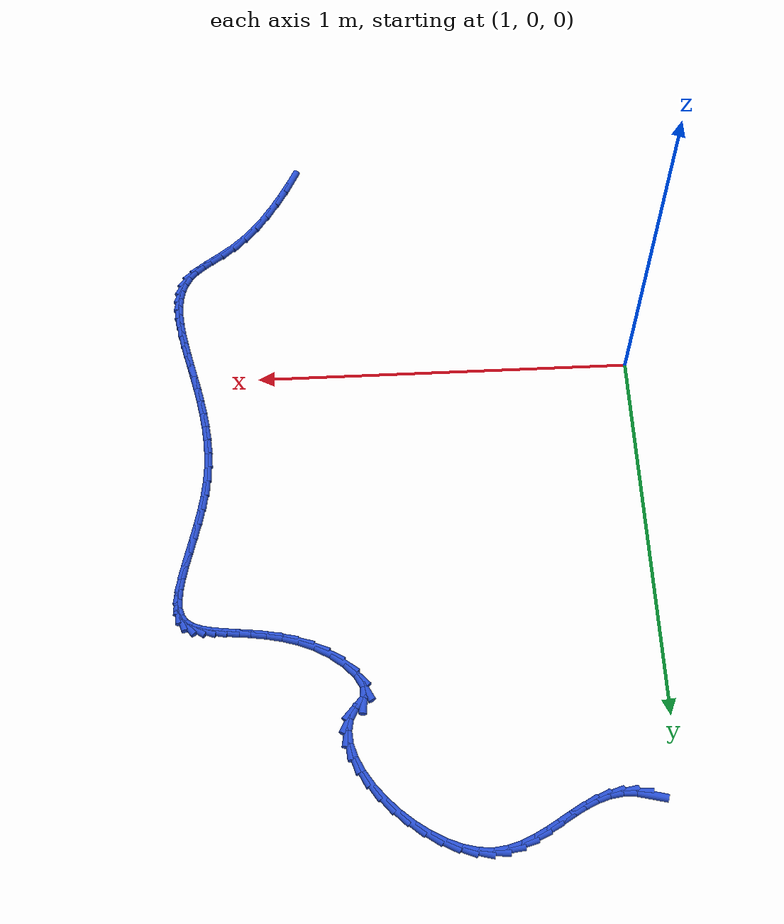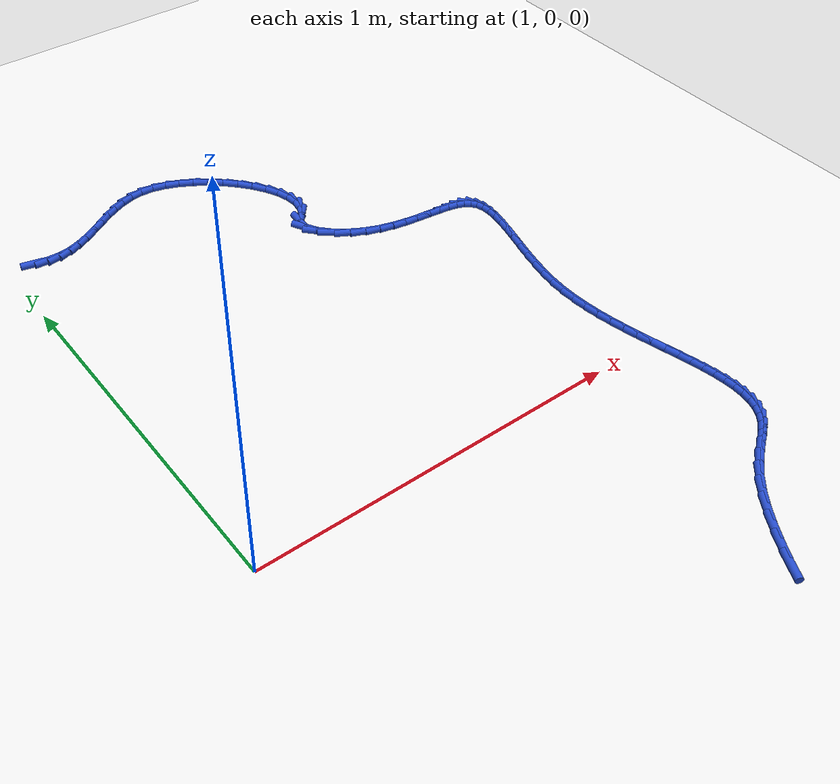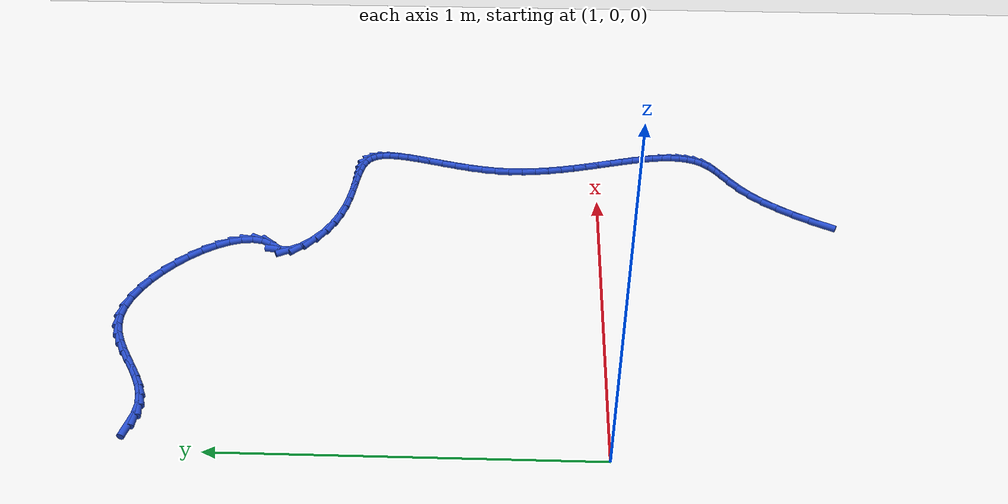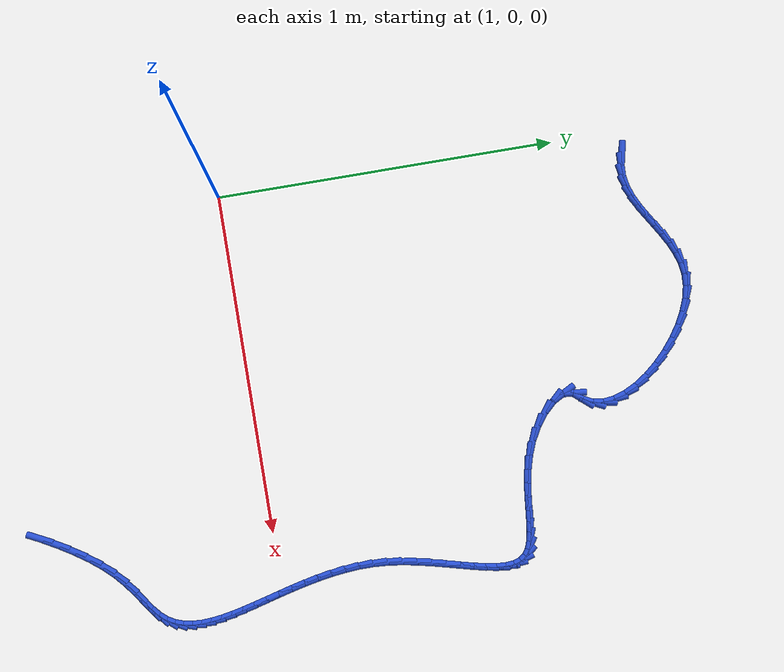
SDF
<sdf version="1.6">
 <world name="default">
  <model name="ground_plane">
   <static>1</static>
   <link name="link">
    <collision name="collision">
     <geometry><plane><normal>0 0 1</normal><size>100 100</size></plane></geometry>
     <surface><friction><ode><mu>100</mu><mu2>50</mu2></ode></friction></surface>
    </collision>
    <visual name="visual">
     <cast_shadows>0</cast_shadows>
     <geometry><plane><normal>0 0 1</normal><size>100 100</size></plane></geometry>
     <material>
      <script><uri>file://media/materials/scripts/gazebo.material</uri><name>Gazebo/WhiteGlow</name></script>
     </material>
    </visual>
   </link>
  </model>
  <model name="line">
   <link name="link_62">
    <pose>1.0725302197356754 1.198411769663786 0.01 0 1.57 -0.23855446451380014</pose>
    <collision name="collision">
     <geometry><cylinder><radius>0.01</radius><length>0.08</length></cylinder></geometry>
    </collision>
    <visual name="visual">
     <material>
      <script><name>Gazebo/Blue</name><uri>file://media/materials/scripts/gazebo.material</uri></script>
     </material>
     <geometry><cylinder><radius>0.01</radius><length>0.08</length></cylinder></geometry>
    </visual>
   </link>
   <link name="link_63">
    <pose>1.1070019052104223 1.1900287679977817 0.01 0 1.57 -0.049067895758301526</pose>
    <collision name="collision">
     <geometry><cylinder><radius>0.01</radius><length>0.08</length></cylinder></geometry>
    </collision>
    <visual name="visual">
     <material>
      <script><name>Gazebo/Blue</name><uri>file://media/materials/scripts/gazebo.material</uri></script>
     </material>
     <geometry><cylinder><radius>0.01</radius><length>0.08</length></cylinder></geometry>
    </visual>
   </link>
   <link name="link_64">
    <pose>1.1403115685401954 1.188393019924817 0.01 0 1.57 0.1530888648003386</pose>
    <collision name="collision">
     <geometry><cylinder><radius>0.01</radius><length>0.08</length></cylinder></geometry>
    </collision>
    <visual name="visual">
     <material>
      <script><name>Gazebo/Blue</name><uri>file://media/materials/scripts/gazebo.material</uri></script>
     </material>
     <geometry><cylinder><radius>0.01</radius><length>0.08</length></cylinder></geometry>
    </visual>
   </link>
   <link name="link_65">
    <pose>1.172433209687254 1.193349264648276 0.01 0 1.57 0.3162603701322058</pose>
    <collision name="collision">
     <geometry><cylinder><radius>0.01</radius><length>0.08</length></cylinder></geometry>
    </collision>
    <visual name="visual">
     <material>
      <script><name>Gazebo/Blue</name><uri>file://media/materials/scripts/gazebo.material</uri></script>
     </material>
     <geometry><cylinder><radius>0.01</radius><length>0.08</length></cylinder></geometry>
    </visual>
   </link>
   <link name="link_66">
    <pose>1.2036524786449312 1.2035655896826858 0.01 0 1.57 0.4328834528946155</pose>
    <collision name="collision">
     <geometry><cylinder><radius>0.01</radius><length>0.08</length></cylinder></geometry>
    </collision>
    <visual name="visual">
     <material>
      <script><name>Gazebo/Blue</name><uri>file://media/materials/scripts/gazebo.material</uri></script>
     </material>
     <geometry><cylinder><radius>0.01</radius><length>0.08</length></cylinder></geometry>
    </visual>
   </link>
   <link name="link_67">
    <pose>1.2342556339498836 1.2177077849540674 0.01 0 1.57 0.5049593893011909</pose>
    <collision name="collision">
     <geometry><cylinder><radius>0.01</radius><length>0.08</length></cylinder></geometry>
    </collision>
    <visual name="visual">
     <material>
      <script><name>Gazebo/Blue</name><uri>file://media/materials/scripts/gazebo.material</uri></script>
     </material>
     <geometry><cylinder><radius>0.01</radius><length>0.08</length></cylinder></geometry>
    </visual>
   </link>
   <link name="link_68">
    <pose>1.2645289341387682 1.2344416403884417 0.01 0 1.57 0.5368480718302174</pose>
    <collision name="collision">
     <geometry><cylinder><radius>0.01</radius><length>0.08</length></cylinder></geometry>
    </collision>
    <visual name="visual">
     <material>
      <script><name>Gazebo/Blue</name><uri>file://media/materials/scripts/gazebo.material</uri></script>
     </material>
     <geometry><cylinder><radius>0.01</radius><length>0.08</length></cylinder></geometry>
    </visual>
   </link>
   <link name="link_69">
    <pose>1.2947586377482414 1.2524329459118302 0.01 0 1.57 0.531471072901981</pose>
    <collision name="collision">
     <geometry><cylinder><radius>0.01</radius><length>0.08</length></cylinder></geometry>
    </collision>
    <visual name="visual">
     <material>
      <script><name>Gazebo/Blue</name><uri>file://media/materials/scripts/gazebo.material</uri></script>
     </material>
     <geometry><cylinder><radius>0.01</radius><length>0.08</length></cylinder></geometry>
    </visual>
   </link>
   <link name="link_70">
    <pose>1.3252310033149604 1.2703474914502535 0.01 0 1.57 0.4891924693507082</pose>
    <collision name="collision">
     <geometry><cylinder><radius>0.01</radius><length>0.08</length></cylinder></geometry>
    </collision>
    <visual name="visual">
     <material>
      <script><name>Gazebo/Blue</name><uri>file://media/materials/scripts/gazebo.material</uri></script>
     </material>
     <geometry><cylinder><radius>0.01</radius><length>0.08</length></cylinder></geometry>
    </visual>
   </link>
   <link name="link_71">
    <pose>1.3562322893755818 1.286851066929733 0.01 0 1.57 0.40814709019419126</pose>
    <collision name="collision">
     <geometry><cylinder><radius>0.01</radius><length>0.08</length></cylinder></geometry>
    </collision>
    <visual name="visual">
     <material>
      <script><name>Gazebo/Blue</name><uri>file://media/materials/scripts/gazebo.material</uri></script>
     </material>
     <geometry><cylinder><radius>0.01</radius><length>0.08</length></cylinder></geometry>
    </visual>
   </link>
   <link name="link_72">
    <pose>1.3880487544667621 1.3006094622762894 0.01 0 1.57 0.2859750832209412</pose>
    <collision name="collision">
     <geometry><cylinder><radius>0.01</radius><length>0.08</length></cylinder></geometry>
    </collision>
    <visual name="visual">
     <material>
      <script><name>Gazebo/Blue</name><uri>file://media/materials/scripts/gazebo.material</uri></script>
     </material>
     <geometry><cylinder><radius>0.01</radius><length>0.08</length></cylinder></geometry>
    </visual>
   </link>
   <link name="link_73">
    <pose>1.420966657125158 1.310288467415944 0.01 0 1.57 0.12370069531639694</pose>
    <collision name="collision">
     <geometry><cylinder><radius>0.01</radius><length>0.08</length></cylinder></geometry>
    </collision>
    <visual name="visual">
     <material>
      <script><name>Gazebo/Blue</name><uri>file://media/materials/scripts/gazebo.material</uri></script>
     </material>
     <geometry><cylinder><radius>0.01</radius><length>0.08</length></cylinder></geometry>
    </visual>
   </link>
   <link name="link_74">
    <pose>1.4552722558874267 1.3145538722747179 0.01 0 1.57 -0.0679400534578358</pose>
    <collision name="collision">
     <geometry><cylinder><radius>0.01</radius><length>0.08</length></cylinder></geometry>
    </collision>
    <visual name="visual">
     <material>
      <script><name>Gazebo/Blue</name><uri>file://media/materials/scripts/gazebo.material</uri></script>
     </material>
     <geometry><cylinder><radius>0.01</radius><length>0.08</length></cylinder></geometry>
    </visual>
   </link>
   <link name="link_75">
    <pose>1.4912329354366503 1.312106935726647 0.01 0 1.57 -0.24813094107652398</pose>
    <collision name="collision">
     <geometry><cylinder><radius>0.01</radius><length>0.08</length></cylinder></geometry>
    </collision>
    <visual name="visual">
     <material>
      <script><name>Gazebo/Blue</name><uri>file://media/materials/scripts/gazebo.material</uri></script>
     </material>
     <geometry><cylinder><radius>0.01</radius><length>0.08</length></cylinder></geometry>
    </visual>
   </link>
   <link name="link_76">
    <pose>1.528586992398095 1.3026432126300584 0.01 0 1.57 -0.3922996211372564</pose>
    <collision name="collision">
     <geometry><cylinder><radius>0.01</radius><length>0.08</length></cylinder></geometry>
    </collision>
    <visual name="visual">
     <material>
      <script><name>Gazebo/Blue</name><uri>file://media/materials/scripts/gazebo.material</uri></script>
     </material>
     <geometry><cylinder><radius>0.01</radius><length>0.08</length></cylinder></geometry>
    </visual>
   </link>
   <link name="link_77">
    <pose>1.5664847734394138 1.2869631708595268 0.01 0 1.57 -0.5105687982481255</pose>
    <collision name="collision">
     <geometry><cylinder><radius>0.01</radius><length>0.08</length></cylinder></geometry>
    </collision>
    <visual name="visual">
     <material>
      <script><name>Gazebo/Blue</name><uri>file://media/materials/scripts/gazebo.material</uri></script>
     </material>
     <geometry><cylinder><radius>0.01</radius><length>0.08</length></cylinder></geometry>
    </visual>
   </link>
   <link name="link_78">
    <pose>1.6040459379145793 1.2659249478444639 0.01 0 1.57 -0.6125208713860294</pose>
    <collision name="collision">
     <geometry><cylinder><radius>0.01</radius><length>0.08</length></cylinder></geometry>
    </collision>
    <visual name="visual">
     <material>
      <script><name>Gazebo/Blue</name><uri>file://media/materials/scripts/gazebo.material</uri></script>
     </material>
     <geometry><cylinder><radius>0.01</radius><length>0.08</length></cylinder></geometry>
    </visual>
   </link>
   <link name="link_79">
    <pose>1.6403901451775613 1.2403866810142785 0.01 0 1.57 -0.7056845828061615</pose>
    <collision name="collision">
     <geometry><cylinder><radius>0.01</radius><length>0.08</length></cylinder></geometry>
    </collision>
    <visual name="visual">
     <material>
      <script><name>Gazebo/Blue</name><uri>file://media/materials/scripts/gazebo.material</uri></script>
     </material>
     <geometry><cylinder><radius>0.01</radius><length>0.08</length></cylinder></geometry>
    </visual>
   </link>
   <link name="link_80">
    <pose>1.6746370545823317 1.211206507798381 0.01 0 1.57 -0.7963835821910474</pose>
    <collision name="collision">
     <geometry><cylinder><radius>0.01</radius><length>0.08</length></cylinder></geometry>
    </collision>
    <visual name="visual">
     <material>
      <script><name>Gazebo/Blue</name><uri>file://media/materials/scripts/gazebo.material</uri></script>
     </material>
     <geometry><cylinder><radius>0.01</radius><length>0.08</length></cylinder></geometry>
    </visual>
   </link>
   <link name="link_81">
    <pose>1.7059063254828615 1.1792425656261807 0.01 0 1.57 -0.8906874628581402</pose>
    <collision name="collision">
     <geometry><cylinder><radius>0.01</radius><length>0.08</length></cylinder></geometry>
    </collision>
    <visual name="visual">
     <material>
      <script><name>Gazebo/Blue</name><uri>file://media/materials/scripts/gazebo.material</uri></script>
     </material>
     <geometry><cylinder><radius>0.01</radius><length>0.08</length></cylinder></geometry>
    </visual>
   </link>
   <link name="link_82">
    <pose>1.7333176172331215 1.1453529919270882 0.01 0 1.57 -0.995409587791028</pose>
    <collision name="collision">
     <geometry><cylinder><radius>0.01</radius><length>0.08</length></cylinder></geometry>
    </collision>
    <visual name="visual">
     <material>
      <script><name>Gazebo/Blue</name><uri>file://media/materials/scripts/gazebo.material</uri></script>
     </material>
     <geometry><cylinder><radius>0.01</radius><length>0.08</length></cylinder></geometry>
    </visual>
   </link>
   <link name="link_83">
    <pose>1.7559905891870837 1.1103959241305132 0.01 0 1.57 -1.1192528962070156</pose>
    <collision name="collision">
     <geometry><cylinder><radius>0.01</radius><length>0.08</length></cylinder></geometry>
    </collision>
    <visual name="visual">
     <material>
      <script><name>Gazebo/Blue</name><uri>file://media/materials/scripts/gazebo.material</uri></script>
     </material>
     <geometry><cylinder><radius>0.01</radius><length>0.08</length></cylinder></geometry>
    </visual>
   </link>
   <link name="link_84">
    <pose>1.7730449006987188 1.075229499665866 0.01 0 1.57 -1.2740318638897246</pose>
    <collision name="collision">
     <geometry><cylinder><radius>0.01</radius><length>0.08</length></cylinder></geometry>
    </collision>
    <visual name="visual">
     <material>
      <script><name>Gazebo/Blue</name><uri>file://media/materials/scripts/gazebo.material</uri></script>
     </material>
     <geometry><cylinder><radius>0.01</radius><length>0.08</length></cylinder></geometry>
    </visual>
   </link>
   <link name="link_85">
    <pose>1.7836002111219986 1.0407118559625563 0.01 0 1.57 -1.4748813368301181</pose>
    <collision name="collision">
     <geometry><cylinder><radius>0.01</radius><length>0.08</length></cylinder></geometry>
    </collision>
    <visual name="visual">
     <material>
      <script><name>Gazebo/Blue</name><uri>file://media/materials/scripts/gazebo.material</uri></script>
     </material>
     <geometry><cylinder><radius>0.01</radius><length>0.08</length></cylinder></geometry>
    </visual>
   </link>
   <link name="link_86">
    <pose>1.7867761798108934 1.0077011304499939 0.01 0 1.57 1.4064064842448656</pose>
    <collision name="collision">
     <geometry><cylinder><radius>0.01</radius><length>0.08</length></cylinder></geometry>
    </collision>
    <visual name="visual">
     <material>
      <script><name>Gazebo/Blue</name><uri>file://media/materials/scripts/gazebo.material</uri></script>
     </material>
     <geometry><cylinder><radius>0.01</radius><length>0.08</length></cylinder></geometry>
    </visual>
   </link>
   <link name="link_87">
    <pose>1.7816924661193747 0.977055460557589 0.01 0 1.57 1.0923095576622037</pose>
    <collision name="collision">
     <geometry><cylinder><radius>0.01</radius><length>0.08</length></cylinder></geometry>
    </collision>
    <visual name="visual">
     <material>
      <script><name>Gazebo/Blue</name><uri>file://media/materials/scripts/gazebo.material</uri></script>
     </material>
     <geometry><cylinder><radius>0.01</radius><length>0.08</length></cylinder></geometry>
    </visual>
   </link>
   <link name="link_88">
    <pose>1.7674687294014142 0.9496329837147517 0.01 0 1.57 0.8522070812873982</pose>
    <collision name="collision">
     <geometry><cylinder><radius>0.01</radius><length>0.08</length></cylinder></geometry>
    </collision>
    <visual name="visual">
     <material>
      <script><name>Gazebo/Blue</name><uri>file://media/materials/scripts/gazebo.material</uri></script>
     </material>
     <geometry><cylinder><radius>0.01</radius><length>0.08</length></cylinder></geometry>
    </visual>
   </link>
   <link name="link_89">
    <pose>1.7462061515371854 0.9253210863145114 0.01 0 1.57 1.4754120001966309</pose>
    <collision name="collision">
     <geometry><cylinder><radius>0.01</radius><length>0.08</length></cylinder></geometry>
    </collision>
    <visual name="visual">
     <material>
      <script><name>Gazebo/Blue</name><uri>file://media/materials/scripts/gazebo.material</uri></script>
     </material>
     <geometry><cylinder><radius>0.01</radius><length>0.08</length></cylinder></geometry>
    </visual>
   </link>
   <link name="link_90">
    <pose>1.7434643573190165 0.896663610136645 0.01 0 1.57 -1.0872353859506165</pose>
    <collision name="collision">
     <geometry><cylinder><radius>0.01</radius><length>0.08</length></cylinder></geometry>
    </collision>
    <visual name="visual">
     <material>
      <script><name>Gazebo/Blue</name><uri>file://media/materials/scripts/gazebo.material</uri></script>
     </material>
     <geometry><cylinder><radius>0.01</radius><length>0.08</length></cylinder></geometry>
    </visual>
   </link>
   <link name="link_91">
    <pose>1.760200186025769 0.8647946644675328 0.01 0 1.57 -0.8142462685702728</pose>
    <collision name="collision">
     <geometry><cylinder><radius>0.01</radius><length>0.08</length></cylinder></geometry>
    </collision>
    <visual name="visual">
     <material>
      <script><name>Gazebo/Blue</name><uri>file://media/materials/scripts/gazebo.material</uri></script>
     </material>
     <geometry><cylinder><radius>0.01</radius><length>0.08</length></cylinder></geometry>
    </visual>
   </link>
   <link name="link_92">
    <pose>1.7898831612738038 0.833347717431573 0.01 0 1.57 -0.6491039798744452</pose>
    <collision name="collision">
     <geometry><cylinder><radius>0.01</radius><length>0.08</length></cylinder></geometry>
    </collision>
    <visual name="visual">
     <material>
      <script><name>Gazebo/Blue</name><uri>file://media/materials/scripts/gazebo.material</uri></script>
     </material>
     <geometry><cylinder><radius>0.01</radius><length>0.08</length></cylinder></geometry>
    </visual>
   </link>
   <link name="link_93">
    <pose>1.826004796761789 0.8059389266849057 0.01 0 1.57 -0.5107682421476043</pose>
    <collision name="collision">
     <geometry><cylinder><radius>0.01</radius><length>0.08</length></cylinder></geometry>
    </collision>
    <visual name="visual">
     <material>
      <script><name>Gazebo/Blue</name><uri>file://media/materials/scripts/gazebo.material</uri></script>
     </material>
     <geometry><cylinder><radius>0.01</radius><length>0.08</length></cylinder></geometry>
    </visual>
   </link>
   <link name="link_94">
    <pose>1.8640307792810293 0.7846303920055918 0.01 0 1.57 -0.3881775346735512</pose>
    <collision name="collision">
     <geometry><cylinder><radius>0.01</radius><length>0.08</length></cylinder></geometry>
    </collision>
    <visual name="visual">
     <material>
      <script><name>Gazebo/Blue</name><uri>file://media/materials/scripts/gazebo.material</uri></script>
     </material>
     <geometry><cylinder><radius>0.01</radius><length>0.08</length></cylinder></geometry>
    </visual>
   </link>
   <link name="link_95">
    <pose>1.9029379980959547 0.7687202144700319 0.01 0 1.57 -0.28582806841123787</pose>
    <collision name="collision">
     <geometry><cylinder><radius>0.01</radius><length>0.08</length></cylinder></geometry>
    </collision>
    <visual name="visual">
     <material>
      <script><name>Gazebo/Blue</name><uri>file://media/materials/scripts/gazebo.material</uri></script>
     </material>
     <geometry><cylinder><radius>0.01</radius><length>0.08</length></cylinder></geometry>
    </visual>
   </link>
   <link name="link_96">
    <pose>1.9420650654935177 0.7572217488398622 0.01 0 1.57 -0.2057400702234697</pose>
    <collision name="collision">
     <geometry><cylinder><radius>0.01</radius><length>0.08</length></cylinder></geometry>
    </collision>
    <visual name="visual">
     <material>
      <script><name>Gazebo/Blue</name><uri>file://media/materials/scripts/gazebo.material</uri></script>
     </material>
     <geometry><cylinder><radius>0.01</radius><length>0.08</length></cylinder></geometry>
    </visual>
   </link>
   <link name="link_97">
    <pose>1.9807505937606706 0.7491483498767193 0.01 0 1.57 -0.14882716295738344</pose>
    <collision name="collision">
     <geometry><cylinder><radius>0.01</radius><length>0.08</length></cylinder></geometry>
    </collision>
    <visual name="visual">
     <material>
      <script><name>Gazebo/Blue</name><uri>file://media/materials/scripts/gazebo.material</uri></script>
     </material>
     <geometry><cylinder><radius>0.01</radius><length>0.08</length></cylinder></geometry>
    </visual>
   </link>
   <link name="link_98">
    <pose>2.018333195184366 0.7435133723422397 0.01 0 1.57 -0.11626285119579415</pose>
    <collision name="collision">
     <geometry><cylinder><radius>0.01</radius><length>0.08</length></cylinder></geometry>
    </collision>
    <visual name="visual">
     <material>
      <script><name>Gazebo/Blue</name><uri>file://media/materials/scripts/gazebo.material</uri></script>
     </material>
     <geometry><cylinder><radius>0.01</radius><length>0.08</length></cylinder></geometry>
    </visual>
   </link>
   <link name="link_99">
    <pose>2.0541514820515574 0.7393301709980596 0.01 0 1.57 -0.1108874549444728</pose>
    <collision name="collision">
     <geometry><cylinder><radius>0.01</radius><length>0.08</length></cylinder></geometry>
    </collision>
    <visual name="visual">
     <material>
      <script><name>Gazebo/Blue</name><uri>file://media/materials/scripts/gazebo.material</uri></script>
     </material>
     <geometry><cylinder><radius>0.01</radius><length>0.08</length></cylinder></geometry>
    </visual>
   </link>
   <link name="link_100">
    <pose>2.0875440666491962 0.7356121006058159 0.01 0 1.57 -0.13899287783391914</pose>
    <collision name="collision">
     <geometry><cylinder><radius>0.01</radius><length>0.08</length></cylinder></geometry>
    </collision>
    <visual name="visual">
     <material>
      <script><name>Gazebo/Blue</name><uri>file://media/materials/scripts/gazebo.material</uri></script>
     </material>
     <geometry><cylinder><radius>0.01</radius><length>0.08</length></cylinder></geometry>
    </visual>
   </link>
   <link name="link_101">
    <pose>2.1178495612642356 0.7313725159271447 0.01 0 1.57 -0.21314290129281646</pose>
    <collision name="collision">
     <geometry><cylinder><radius>0.01</radius><length>0.08</length></cylinder></geometry>
    </collision>
    <visual name="visual">
     <material>
      <script><name>Gazebo/Blue</name><uri>file://media/materials/scripts/gazebo.material</uri></script>
     </material>
     <geometry><cylinder><radius>0.01</radius><length>0.08</length></cylinder></geometry>
    </visual>
   </link>
   <link name="link_102">
    <pose>2.1444065781836286 0.7256247717236824 0.01 0 1.57 -0.3562889976003525</pose>
    <collision name="collision">
     <geometry><cylinder><radius>0.01</radius><length>0.08</length></cylinder></geometry>
    </collision>
    <visual name="visual">
     <material>
      <script><name>Gazebo/Blue</name><uri>file://media/materials/scripts/gazebo.material</uri></script>
     </material>
     <geometry><cylinder><radius>0.01</radius><length>0.08</length></cylinder></geometry>
    </visual>
   </link>
   <link name="link_103">
    <pose>2.1665537296943267 0.7173822227570658 0.01 0 1.57 -0.6016634966717122</pose>
    <collision name="collision">
     <geometry><cylinder><radius>0.01</radius><length>0.08</length></cylinder></geometry>
    </collision>
    <visual name="visual">
     <material>
      <script><name>Gazebo/Blue</name><uri>file://media/materials/scripts/gazebo.material</uri></script>
     </material>
     <geometry><cylinder><radius>0.01</radius><length>0.08</length></cylinder></geometry>
    </visual>
   </link>
   <link name="link_104">
    <pose>2.183629628083283 0.7056582237889307 0.01 0 1.57 -0.9522144771502672</pose>
    <collision name="collision">
     <geometry><cylinder><radius>0.01</radius><length>0.08</length></cylinder></geometry>
    </collision>
    <visual name="visual">
     <material>
      <script><name>Gazebo/Blue</name><uri>file://media/materials/scripts/gazebo.material</uri></script>
     </material>
     <geometry><cylinder><radius>0.01</radius><length>0.08</length></cylinder></geometry>
    </visual>
   </link>
   <link name="link_105">
    <pose>2.1950796364676814 0.6895715601614463 0.01 0 1.57 -1.2791982818095244</pose>
    <collision name="collision">
     <geometry><cylinder><radius>0.01</radius><length>0.08</length></cylinder></geometry>
    </collision>
    <visual name="visual">
     <material>
      <script><name>Gazebo/Blue</name><uri>file://media/materials/scripts/gazebo.material</uri></script>
     </material>
     <geometry><cylinder><radius>0.01</radius><length>0.08</length></cylinder></geometry>
    </visual>
   </link>
   <link name="link_106">
    <pose>2.2012230219450477 0.6691041131175527 0.01 0 1.57 -1.5061014018604384</pose>
    <collision name="collision">
     <geometry><cylinder><radius>0.01</radius><length>0.08</length></cylinder></geometry>
    </collision>
    <visual name="visual">
     <material>
      <script><name>Gazebo/Blue</name><uri>file://media/materials/scripts/gazebo.material</uri></script>
     </material>
     <geometry><cylinder><radius>0.01</radius><length>0.08</length></cylinder></geometry>
    </visual>
   </link>
   <link name="link_107">
    <pose>2.2028066379830977 0.6446600620606752 0.01 0 1.57 1.491487955859734</pose>
    <collision name="collision">
     <geometry><cylinder><radius>0.01</radius><length>0.08</length></cylinder></geometry>
    </collision>
    <visual name="visual">
     <material>
      <script><name>Gazebo/Blue</name><uri>file://media/materials/scripts/gazebo.material</uri></script>
     </material>
     <geometry><cylinder><radius>0.01</radius><length>0.08</length></cylinder></geometry>
    </visual>
   </link>
   <link name="link_108">
    <pose>2.200580255663283 0.616646467924145 0.01 0 1.57 1.4028215540339988</pose>
    <collision name="collision">
     <geometry><cylinder><radius>0.01</radius><length>0.08</length></cylinder></geometry>
    </collision>
    <visual name="visual">
     <material>
      <script><name>Gazebo/Blue</name><uri>file://media/materials/scripts/gazebo.material</uri></script>
     </material>
     <geometry><cylinder><radius>0.01</radius><length>0.08</length></cylinder></geometry>
    </visual>
   </link>
   <link name="link_109">
    <pose>2.195293646067053 0.585470391641293 0.01 0 1.57 1.3505346411822199</pose>
    <collision name="collision">
     <geometry><cylinder><radius>0.01</radius><length>0.08</length></cylinder></geometry>
    </collision>
    <visual name="visual">
     <material>
      <script><name>Gazebo/Blue</name><uri>file://media/materials/scripts/gazebo.material</uri></script>
     </material>
     <geometry><cylinder><radius>0.01</radius><length>0.08</length></cylinder></geometry>
    </visual>
   </link>
   <link name="link_110">
    <pose>2.1876965802758614 0.5515388941454499 0.01 0 1.57 1.3235415964468178</pose>
    <collision name="collision">
     <geometry><cylinder><radius>0.01</radius><length>0.08</length></cylinder></geometry>
    </collision>
    <visual name="visual">
     <material>
      <script><name>Gazebo/Blue</name><uri>file://media/materials/scripts/gazebo.material</uri></script>
     </material>
     <geometry><cylinder><radius>0.01</radius><length>0.08</length></cylinder></geometry>
    </visual>
   </link>
   <link name="link_111">
    <pose>2.1785388293711567 0.5152590363699463 0.01 0 1.57 1.315664686260551</pose>
    <collision name="collision">
     <geometry><cylinder><radius>0.01</radius><length>0.08</length></cylinder></geometry>
    </collision>
    <visual name="visual">
     <material>
      <script><name>Gazebo/Blue</name><uri>file://media/materials/scripts/gazebo.material</uri></script>
     </material>
     <geometry><cylinder><radius>0.01</radius><length>0.08</length></cylinder></geometry>
    </visual>
   </link>
   <link name="link_112">
    <pose>2.1685701644343895 0.47703787924811314 0.01 0 1.57 1.3236654456185286</pose>
    <collision name="collision">
     <geometry><cylinder><radius>0.01</radius><length>0.08</length></cylinder></geometry>
    </collision>
    <visual name="visual">
     <material>
      <script><name>Gazebo/Blue</name><uri>file://media/materials/scripts/gazebo.material</uri></script>
     </material>
     <geometry><cylinder><radius>0.01</radius><length>0.08</length></cylinder></geometry>
    </visual>
   </link>
   <link name="link_113">
    <pose>2.1585403565470123 0.4372824837132813 0.01 0 1.57 1.34616438997724</pose>
    <collision name="collision">
     <geometry><cylinder><radius>0.01</radius><length>0.08</length></cylinder></geometry>
    </collision>
    <visual name="visual">
     <material>
      <script><name>Gazebo/Blue</name><uri>file://media/materials/scripts/gazebo.material</uri></script>
     </material>
     <geometry><cylinder><radius>0.01</radius><length>0.08</length></cylinder></geometry>
    </visual>
   </link>
   <link name="link_114">
    <pose>2.1491991767904746 0.39639991069878167 0.01 0 1.57 1.383074526522129</pose>
    <collision name="collision">
     <geometry><cylinder><radius>0.01</radius><length>0.08</length></cylinder></geometry>
    </collision>
    <visual name="visual">
     <material>
      <script><name>Gazebo/Blue</name><uri>file://media/materials/scripts/gazebo.material</uri></script>
     </material>
     <geometry><cylinder><radius>0.01</radius><length>0.08</length></cylinder></geometry>
    </visual>
   </link>
   <link name="link_115">
    <pose>2.1412963962462275 0.3547972211379448 0.01 0 1.57 1.4352960910155117</pose>
    <collision name="collision">
     <geometry><cylinder><radius>0.01</radius><length>0.08</length></cylinder></geometry>
    </collision>
    <visual name="visual">
     <material>
      <script><name>Gazebo/Blue</name><uri>file://media/materials/scripts/gazebo.material</uri></script>
     </material>
     <geometry><cylinder><radius>0.01</radius><length>0.08</length></cylinder></geometry>
    </visual>
   </link>
   <link name="link_116">
    <pose>2.1355817859957216 0.31288147596410154 0.01 0 1.57 1.5034186001012668</pose>
    <collision name="collision">
     <geometry><cylinder><radius>0.01</radius><length>0.08</length></cylinder></geometry>
    </collision>
    <visual name="visual">
     <material>
      <script><name>Gazebo/Blue</name><uri>file://media/materials/scripts/gazebo.material</uri></script>
     </material>
     <geometry><cylinder><radius>0.01</radius><length>0.08</length></cylinder></geometry>
    </visual>
   </link>
   <link name="link_117">
    <pose>2.1327588207849044 0.2710472943136926 0.01 0 1.57 -1.5675805685445414</pose>
    <collision name="collision">
     <geometry><cylinder><radius>0.01</radius><length>0.08</length></cylinder></geometry>
    </collision>
    <visual name="visual">
     <material>
      <script><name>Gazebo/Blue</name><uri>file://media/materials/scripts/gazebo.material</uri></script>
     </material>
     <geometry><cylinder><radius>0.01</radius><length>0.08</length></cylinder></geometry>
    </visual>
   </link>
   <link name="link_118">
    <pose>2.1328923704612235 0.22951767499179215 0.01 0 1.57 -1.505491441710417</pose>
    <collision name="collision">
     <geometry><cylinder><radius>0.01</radius><length>0.08</length></cylinder></geometry>
    </collision>
    <visual name="visual">
     <material>
      <script><name>Gazebo/Blue</name><uri>file://media/materials/scripts/gazebo.material</uri></script>
     </material>
     <geometry><cylinder><radius>0.01</radius><length>0.08</length></cylinder></geometry>
    </visual>
   </link>
   <link name="link_119">
    <pose>2.1355819960192446 0.18839056849941788 0.01 0 1.57 -1.4523579285981032</pose>
    <collision name="collision">
     <geometry><cylinder><radius>0.01</radius><length>0.08</length></cylinder></geometry>
    </collision>
    <visual name="visual">
     <material>
      <script><name>Gazebo/Blue</name><uri>file://media/materials/scripts/gazebo.material</uri></script>
     </material>
     <geometry><cylinder><radius>0.01</radius><length>0.08</length></cylinder></geometry>
    </visual>
   </link>
   <link name="link_120">
    <pose>2.140416713938561 0.1477610915773743 0.01 0 1.57 -1.4081751858163063</pose>
    <collision name="collision">
     <geometry><cylinder><radius>0.01</radius><length>0.08</length></cylinder></geometry>
    </collision>
    <visual name="visual">
     <material>
      <script><name>Gazebo/Blue</name><uri>file://media/materials/scripts/gazebo.material</uri></script>
     </material>
     <geometry><cylinder><radius>0.01</radius><length>0.08</length></cylinder></geometry>
    </visual>
   </link>
   <link name="link_121">
    <pose>2.146985540698766 0.10772436096646434 0.01 0 1.57 -1.3728588648529434</pose>
    <collision name="collision">
     <geometry><cylinder><radius>0.01</radius><length>0.08</length></cylinder></geometry>
    </collision>
    <visual name="visual">
     <material>
      <script><name>Gazebo/Blue</name><uri>file://media/materials/scripts/gazebo.material</uri></script>
     </material>
     <geometry><cylinder><radius>0.01</radius><length>0.08</length></cylinder></geometry>
    </visual>
   </link>
   <link name="link_122">
    <pose>2.154877492779451 0.06837549340749256 0.01 0 1.57 -1.3463554060933227</pose>
    <collision name="collision">
     <geometry><cylinder><radius>0.01</radius><length>0.08</length></cylinder></geometry>
    </collision>
    <visual name="visual">
     <material>
      <script><name>Gazebo/Blue</name><uri>file://media/materials/scripts/gazebo.material</uri></script>
     </material>
     <geometry><cylinder><radius>0.01</radius><length>0.08</length></cylinder></geometry>
    </visual>
   </link>
   <link name="link_123">
    <pose>2.163681586660211 0.029809605641262893 0.01 0 1.57 -1.328734018264156</pose>
    <collision name="collision">
     <geometry><cylinder><radius>0.01</radius><length>0.08</length></cylinder></geometry>
    </collision>
    <visual name="visual">
     <material>
      <script><name>Gazebo/Blue</name><uri>file://media/materials/scripts/gazebo.material</uri></script>
     </material>
     <geometry><cylinder><radius>0.01</radius><length>0.08</length></cylinder></geometry>
    </visual>
   </link>
   <link name="link_124">
    <pose>2.172986838820639 -0.007878185591420667 0.01 0 1.57 -1.3202682232139256</pose>
    <collision name="collision">
     <geometry><cylinder><radius>0.01</radius><length>0.08</length></cylinder></geometry>
    </collision>
    <visual name="visual">
     <material>
      <script><name>Gazebo/Blue</name><uri>file://media/materials/scripts/gazebo.material</uri></script>
     </material>
     <geometry><cylinder><radius>0.01</radius><length>0.08</length></cylinder></geometry>
    </visual>
   </link>
   <link name="link_125">
    <pose>2.182382265740327 -0.04459276354975403 0.01 0 1.57 -1.321517107505703</pose>
    <collision name="collision">
     <geometry><cylinder><radius>0.01</radius><length>0.08</length></cylinder></geometry>
    </collision>
    <visual name="visual">
     <material>
      <script><name>Gazebo/Blue</name><uri>file://media/materials/scripts/gazebo.material</uri></script>
     </material>
     <geometry><cylinder><radius>0.01</radius><length>0.08</length></cylinder></geometry>
    </visual>
   </link>
   <link name="link_126">
    <pose>2.1914568838988693 -0.08023901149293325 0.01 0 1.57 -1.3334162529892934</pose>
    <collision name="collision">
     <geometry><cylinder><radius>0.01</radius><length>0.08</length></cylinder></geometry>
    </collision>
    <visual name="visual">
     <material>
      <script><name>Gazebo/Blue</name><uri>file://media/materials/scripts/gazebo.material</uri></script>
     </material>
     <geometry><cylinder><radius>0.01</radius><length>0.08</length></cylinder></geometry>
    </visual>
   </link>
   <link name="link_127">
    <pose>2.199799709775858 -0.11472181268015433 0.01 0 1.57 -1.357385560918789</pose>
    <collision name="collision">
     <geometry><cylinder><radius>0.01</radius><length>0.08</length></cylinder></geometry>
    </collision>
    <visual name="visual">
     <material>
      <script><name>Gazebo/Blue</name><uri>file://media/materials/scripts/gazebo.material</uri></script>
     </material>
     <geometry><cylinder><radius>0.01</radius><length>0.08</length></cylinder></geometry>
    </visual>
   </link>
   <link name="link_128">
    <pose>2.2069997598508873 -0.14794605037061329 0.01 0 1.57 -1.395452488940205</pose>
    <collision name="collision">
     <geometry><cylinder><radius>0.01</radius><length>0.08</length></cylinder></geometry>
    </collision>
    <visual name="visual">
     <material>
      <script><name>Gazebo/Blue</name><uri>file://media/materials/scripts/gazebo.material</uri></script>
     </material>
     <geometry><cylinder><radius>0.01</radius><length>0.08</length></cylinder></geometry>
    </visual>
   </link>
   <link name="link_129">
    <pose>2.21264605060355 -0.1798166078235062 0.01 0 1.57 -1.4503650324044886</pose>
    <collision name="collision">
     <geometry><cylinder><radius>0.01</radius><length>0.08</length></cylinder></geometry>
    </collision>
    <visual name="visual">
     <material>
      <script><name>Gazebo/Blue</name><uri>file://media/materials/scripts/gazebo.material</uri></script>
     </material>
     <geometry><cylinder><radius>0.01</radius><length>0.08</length></cylinder></geometry>
    </visual>
   </link>
   <link name="link_130">
    <pose>2.2163275985134385 -0.21023836829802886 0.01 0 1.57 -1.5256083103082578</pose>
    <collision name="collision">
     <geometry><cylinder><radius>0.01</radius><length>0.08</length></cylinder></geometry>
    </collision>
    <visual name="visual">
     <material>
      <script><name>Gazebo/Blue</name><uri>file://media/materials/scripts/gazebo.material</uri></script>
     </material>
     <geometry><cylinder><radius>0.01</radius><length>0.08</length></cylinder></geometry>
    </visual>
   </link>
   <link name="link_131">
    <pose>2.217633420060146 -0.23911621505337738 0.01 0 1.57 1.5164829581030599</pose>
    <collision name="collision">
     <geometry><cylinder><radius>0.01</radius><length>0.08</length></cylinder></geometry>
    </collision>
    <visual name="visual">
     <material>
      <script><name>Gazebo/Blue</name><uri>file://media/materials/scripts/gazebo.material</uri></script>
     </material>
     <geometry><cylinder><radius>0.01</radius><length>0.08</length></cylinder></geometry>
    </visual>
   </link>
   <link name="link_132">
    <pose>2.2161525317232664 -0.26635503134874783 0.01 0 1.57 1.3893731574350443</pose>
    <collision name="collision">
     <geometry><cylinder><radius>0.01</radius><length>0.08</length></cylinder></geometry>
    </collision>
    <visual name="visual">
     <material>
      <script><name>Gazebo/Blue</name><uri>file://media/materials/scripts/gazebo.material</uri></script>
     </material>
     <geometry><cylinder><radius>0.01</radius><length>0.08</length></cylinder></geometry>
    </visual>
   </link>
   <link name="link_133">
    <pose>2.211473949982393 -0.29185970044333615 0.01 0 1.57 1.2340888891249182</pose>
    <collision name="collision">
     <geometry><cylinder><radius>0.01</radius><length>0.08</length></cylinder></geometry>
    </collision>
    <visual name="visual">
     <material>
      <script><name>Gazebo/Blue</name><uri>file://media/materials/scripts/gazebo.material</uri></script>
     </material>
     <geometry><cylinder><radius>0.01</radius><length>0.08</length></cylinder></geometry>
    </visual>
   </link>
   <link name="link_134">
    <pose>2.203186691317118 -0.31553510559633835 0.01 0 1.57 1.0558969783846288</pose>
    <collision name="collision">
     <geometry><cylinder><radius>0.01</radius><length>0.08</length></cylinder></geometry>
    </collision>
    <visual name="visual">
     <material>
      <script><name>Gazebo/Blue</name><uri>file://media/materials/scripts/gazebo.material</uri></script>
     </material>
     <geometry><cylinder><radius>0.01</radius><length>0.08</length></cylinder></geometry>
    </visual>
   </link>
   <link name="link_135">
    <pose>2.190879772207034 -0.33728613006695035 0.01 0 1.57 0.8677135231973551</pose>
    <collision name="collision">
     <geometry><cylinder><radius>0.01</radius><length>0.08</length></cylinder></geometry>
    </collision>
    <visual name="visual">
     <material>
      <script><name>Gazebo/Blue</name><uri>file://media/materials/scripts/gazebo.material</uri></script>
     </material>
     <geometry><cylinder><radius>0.01</radius><length>0.08</length></cylinder></geometry>
    </visual>
   </link>
   <link name="link_136">
    <pose>2.1741490022765078 -0.35702577418555465 0.01 0 1.57 0.7120459994095232</pose>
    <collision name="collision">
     <geometry><cylinder><radius>0.01</radius><length>0.08</length></cylinder></geometry>
    </collision>
    <visual name="visual">
     <material>
      <script><name>Gazebo/Blue</name><uri>file://media/materials/scripts/gazebo.material</uri></script>
     </material>
     <geometry><cylinder><radius>0.01</radius><length>0.08</length></cylinder></geometry>
    </visual>
   </link>
   <link name="link_137">
    <pose>2.153059574816669 -0.3752279008528263 0.01 0 1.57 0.6327593016370006</pose>
    <collision name="collision">
     <geometry><cylinder><radius>0.01</radius><length>0.08</length></cylinder></geometry>
    </collision>
    <visual name="visual">
     <material>
      <script><name>Gazebo/Blue</name><uri>file://media/materials/scripts/gazebo.material</uri></script>
     </material>
     <geometry><cylinder><radius>0.01</radius><length>0.08</length></cylinder></geometry>
    </visual>
   </link>
   <link name="link_138">
    <pose>2.128442177182501 -0.39328105534676294 0.01 0 1.57 0.6182250353687957</pose>
    <collision name="collision">
     <geometry><cylinder><radius>0.01</radius><length>0.08</length></cylinder></geometry>
    </collision>
    <visual name="visual">
     <material>
      <script><name>Gazebo/Blue</name><uri>file://media/materials/scripts/gazebo.material</uri></script>
     </material>
     <geometry><cylinder><radius>0.01</radius><length>0.08</length></cylinder></geometry>
    </visual>
   </link>
   <link name="link_139">
    <pose>2.101197989937873 -0.4126580146839679 0.01 0 1.57 0.6532857624540643</pose>
    <collision name="collision">
     <geometry><cylinder><radius>0.01</radius><length>0.08</length></cylinder></geometry>
    </collision>
    <visual name="visual">
     <material>
      <script><name>Gazebo/Blue</name><uri>file://media/materials/scripts/gazebo.material</uri></script>
     </material>
     <geometry><cylinder><radius>0.01</radius><length>0.08</length></cylinder></geometry>
    </visual>
   </link>
   <link name="link_140">
    <pose>2.0722281936466556 -0.43483155588104455 0.01 0 1.57 0.7258758112155426</pose>
    <collision name="collision">
     <geometry><cylinder><radius>0.01</radius><length>0.08</length></cylinder></geometry>
    </collision>
    <visual name="visual">
     <material>
      <script><name>Gazebo/Blue</name><uri>file://media/materials/scripts/gazebo.material</uri></script>
     </material>
     <geometry><cylinder><radius>0.01</radius><length>0.08</length></cylinder></geometry>
    </visual>
   </link>
   <link name="link_141">
    <pose>2.0424339688727176 -0.4612744559545962 0.01 0 1.57 0.8224116953584103</pose>
    <collision name="collision">
     <geometry><cylinder><radius>0.01</radius><length>0.08</length></cylinder></geometry>
    </collision>
    <visual name="visual">
     <material>
      <script><name>Gazebo/Blue</name><uri>file://media/materials/scripts/gazebo.material</uri></script>
     </material>
     <geometry><cylinder><radius>0.01</radius><length>0.08</length></cylinder></geometry>
    </visual>
   </link>
   <link name="link_142">
    <pose>2.0126871877469683 -0.4933090280259787 0.01 0 1.57 0.9081504101365077</pose>
    <collision name="collision">
     <geometry><cylinder><radius>0.01</radius><length>0.08</length></cylinder></geometry>
    </collision>
    <visual name="visual">
     <material>
      <script><name>Gazebo/Blue</name><uri>file://media/materials/scripts/gazebo.material</uri></script>
     </material>
     <geometry><cylinder><radius>0.01</radius><length>0.08</length></cylinder></geometry>
    </visual>
   </link>
   <link name="link_143">
    <pose>1.9835468754049352 -0.5306514885138273 0.01 0 1.57 0.9733567968217606</pose>
    <collision name="collision">
     <geometry><cylinder><radius>0.01</radius><length>0.08</length></cylinder></geometry>
    </collision>
    <visual name="visual">
     <material>
      <script><name>Gazebo/Blue</name><uri>file://media/materials/scripts/gazebo.material</uri></script>
     </material>
     <geometry><cylinder><radius>0.01</radius><length>0.08</length></cylinder></geometry>
    </visual>
   </link>
   <link name="link_144">
    <pose>1.9553827085635913 -0.5720459752322297 0.01 0 1.57 1.0251549536422477</pose>
    <collision name="collision">
     <geometry><cylinder><radius>0.01</radius><length>0.08</length></cylinder></geometry>
    </collision>
    <visual name="visual">
     <material>
      <script><name>Gazebo/Blue</name><uri>file://media/materials/scripts/gazebo.material</uri></script>
     </material>
     <geometry><cylinder><radius>0.01</radius><length>0.08</length></cylinder></geometry>
    </visual>
   </link>
   <link name="link_145">
    <pose>1.9285617245753308 -0.6162230760017977 0.01 0 1.57 1.0682708012600188</pose>
    <collision name="collision">
     <geometry><cylinder><radius>0.01</radius><length>0.08</length></cylinder></geometry>
    </collision>
    <visual name="visual">
     <material>
      <script><name>Gazebo/Blue</name><uri>file://media/materials/scripts/gazebo.material</uri></script>
     </material>
     <geometry><cylinder><radius>0.01</radius><length>0.08</length></cylinder></geometry>
    </visual>
   </link>
   <link name="link_146">
    <pose>1.9034509607925483 -0.6619133786431465 0.01 0 1.57 1.105991902295944</pose>
    <collision name="collision">
     <geometry><cylinder><radius>0.01</radius><length>0.08</length></cylinder></geometry>
    </collision>
    <visual name="visual">
     <material>
      <script><name>Gazebo/Blue</name><uri>file://media/materials/scripts/gazebo.material</uri></script>
     </material>
     <geometry><cylinder><radius>0.01</radius><length>0.08</length></cylinder></geometry>
    </visual>
   </link>
  </model>
 </world>
</sdf>
